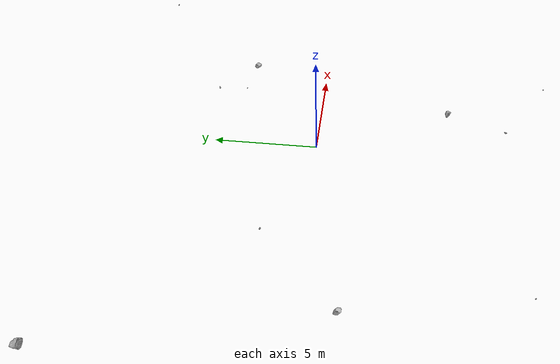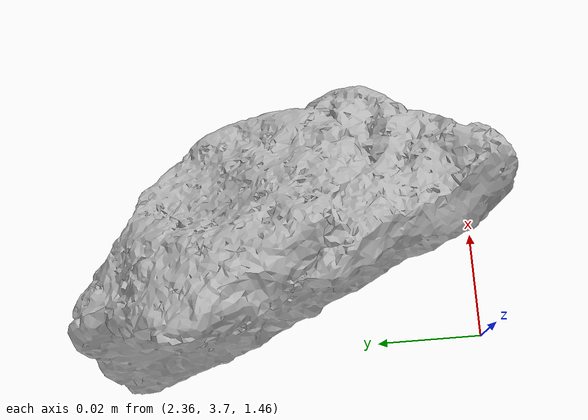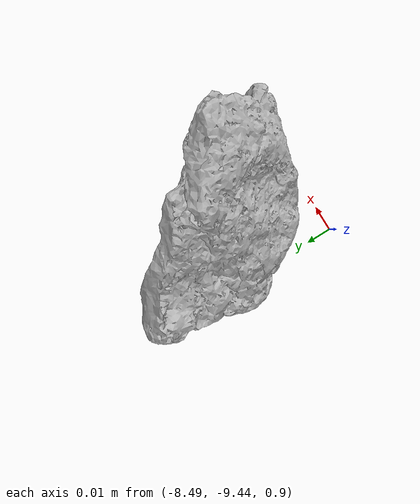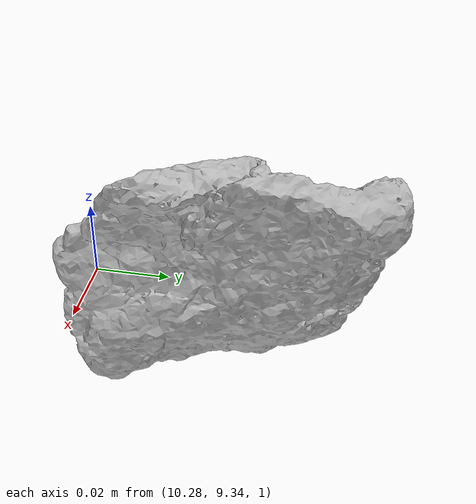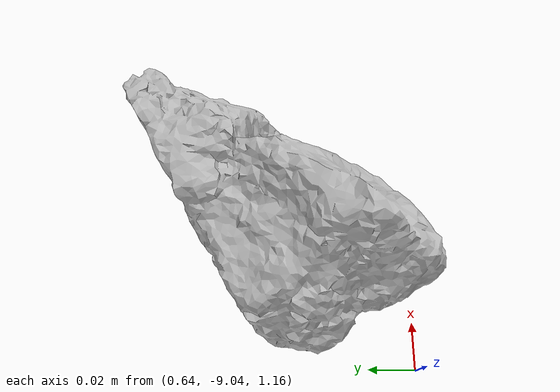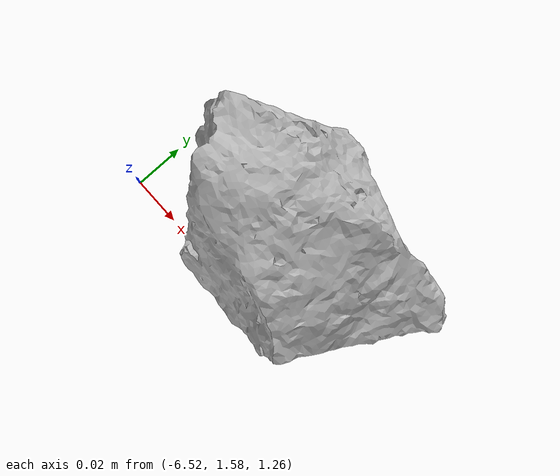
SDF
<sdf version="1.7">
 <world name="marsyard">
  <gravity>0 0 -9.81</gravity>
  <physics name="dart_physics" type="ignored">
   <max_step_size>0.003</max_step_size>
   <real_time_update_rate>333</real_time_update_rate>
   <real_time_factor>1.0</real_time_factor>
  </physics>
  <plugin filename="ignition-gazebo-physics-system" name="ignition::gazebo::systems::Physics"/>
  <plugin filename="ignition-gazebo-user-commands-system" name="ignition::gazebo::systems::UserCommands"/>
  <plugin filename="ignition-gazebo-scene-broadcaster-system" name="ignition::gazebo::systems::SceneBroadcaster"/>
  <plugin filename="ignition-gazebo-contact-system" name="ignition::gazebo::systems::Contact"/>
  <plugin filename="ignition-gazebo-sensors-system" name="ignition::gazebo::systems::Sensors">
   <render_engine>ogre2</render_engine>
  </plugin>
  <plugin filename="ignition-gazebo-imu-system" name="ignition::gazebo::systems::Imu"/>
  <plugin filename="ignition-gazebo-magnetometer-system" name="ignition::gazebo::systems::Magnetometer"/>
  <scene>
   <ambient>0.95 0.95 0.95 1</ambient>
   <background>0.70 0.70 0.70 1</background>
   <shadows>false</shadows>
  </scene>
  <light type="directional" name="sun">
   <cast_shadows>false</cast_shadows>
   <pose>0 0 30 0 0 0</pose>
   <diffuse>1 1 1 1</diffuse>
   <specular>0.15 0.15 0.15 1</specular>
   <direction>-0.35 0.1 -0.93</direction>
  </light>
  <model name="Rock_1">
   <static>true</static>
   <pose>2.7755 -6.4691 0.2921 0.0000 0.0000 -0.7962</pose>
   <link name="link">
    <visual name="visual">
     <geometry><mesh><uri>package://rock_generator/rocks_ws/rock_3/meshes/rock_3.obj</uri></mesh></geometry>
    </visual>
   </link>
  </model>
  <model name="Rock_2">
   <static>true</static>
   <pose>-12.5582 9.3573 1.0439 0.0000 0.0000 -0.2104</pose>
   <link name="link">
    <visual name="visual">
     <geometry><mesh><uri>package://rock_generator/rocks_ws/rock_1/meshes/rock_1.obj</uri></mesh></geometry>
    </visual>
   </link>
  </model>
  <model name="Rock_4">
   <static>true</static>
   <pose>0.7044 -8.9776 1.1910 0.0000 0.0000 0.8228</pose>
   <link name="link">
    <visual name="visual">
     <geometry><mesh><uri>package://rock_generator/rocks_ws/rock_6/meshes/rock_6.obj</uri></mesh></geometry>
    </visual>
   </link>
  </model>
  <model name="Rock_6">
   <static>true</static>
   <pose>3.9063 3.5037 1.7129 0.0000 0.0000 -2.2197</pose>
   <link name="link">
    <visual name="visual">
     <geometry><mesh><uri>package://rock_generator/rocks_ws/rock_3/meshes/rock_3.obj</uri></mesh></geometry>
    </visual>
   </link>
  </model>
  <model name="Rock_8">
   <static>true</static>
   <pose>10.3062 9.3812 1.0287 0.0000 0.0000 1.8182</pose>
   <link name="link">
    <visual name="visual">
     <geometry><mesh><uri>package://rock_generator/rocks_ws/rock_5/meshes/rock_5.obj</uri></mesh></geometry>
    </visual>
   </link>
  </model>
  <model name="Rock_9">
   <static>true</static>
   <pose>3.5047 -10.9601 1.7318 0.0000 0.0000 -2.2853</pose>
   <link name="link">
    <visual name="visual">
     <geometry><mesh><uri>package://rock_generator/rocks_ws/rock_5/meshes/rock_5.obj</uri></mesh></geometry>
    </visual>
   </link>
  </model>
  <model name="Rock_10">
   <static>true</static>
   <pose>-8.4646 -9.4088 0.9373 0.0000 0.0000 2.2673</pose>
   <link name="link">
    <visual name="visual">
     <geometry><mesh><uri>package://rock_generator/rocks_ws/rock_5/meshes/rock_5.obj</uri></mesh></geometry>
    </visual>
   </link>
  </model>
  <model name="Rock_11">
   <static>true</static>
   <pose>2.3762 3.7387 1.4980 0.0000 0.0000 -1.2182</pose>
   <link name="link">
    <visual name="visual">
     <geometry><mesh><uri>package://rock_generator/rocks_ws/rock_5/meshes/rock_5.obj</uri></mesh></geometry>
    </visual>
    <collision name="collision">
     <geometry><mesh><uri>package://rock_generator/rocks_ws/rock_5/meshes/rock_5.obj</uri></mesh></geometry>
    </collision>
   </link>
  </model>
  <model name="Rock_12">
   <static>true</static>
   <pose>2.7483 5.2638 1.1052 0.0000 0.0000 0.3825</pose>
   <link name="link">
    <visual name="visual">
     <geometry><mesh><uri>package://rock_generator/rocks_ws/rock_9/meshes/rock_9.obj</uri></mesh></geometry>
    </visual>
   </link>
  </model>
  <model name="Rock_13">
   <static>true</static>
   <pose>-6.4620 1.6117 1.3191 0.0000 0.0000 2.9213</pose>
   <link name="link">
    <visual name="visual">
     <geometry><mesh><uri>package://rock_generator/rocks_ws/rock_9/meshes/rock_9.obj</uri></mesh></geometry>
    </visual>
   </link>
  </model>
  <model name="Rock_14">
   <static>true</static>
   <pose>-10.1412 -1.9089 1.2528 0.0000 0.0000 -1.6366</pose>
   <link name="link">
    <visual name="visual">
     <geometry><mesh><uri>package://rock_generator/rocks_ws/rock_3/meshes/rock_3.obj</uri></mesh></geometry>
    </visual>
   </link>
  </model>
 </world>
</sdf>
